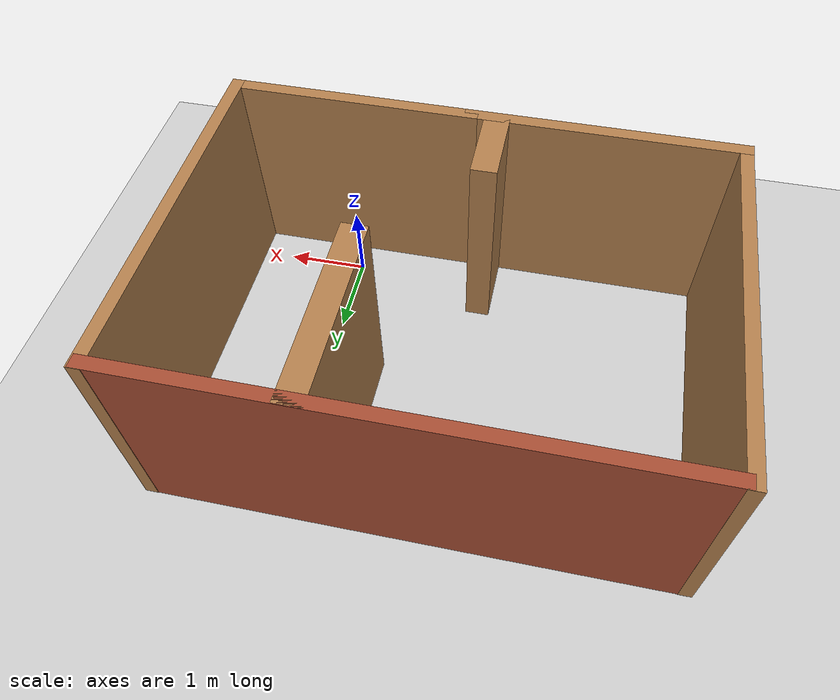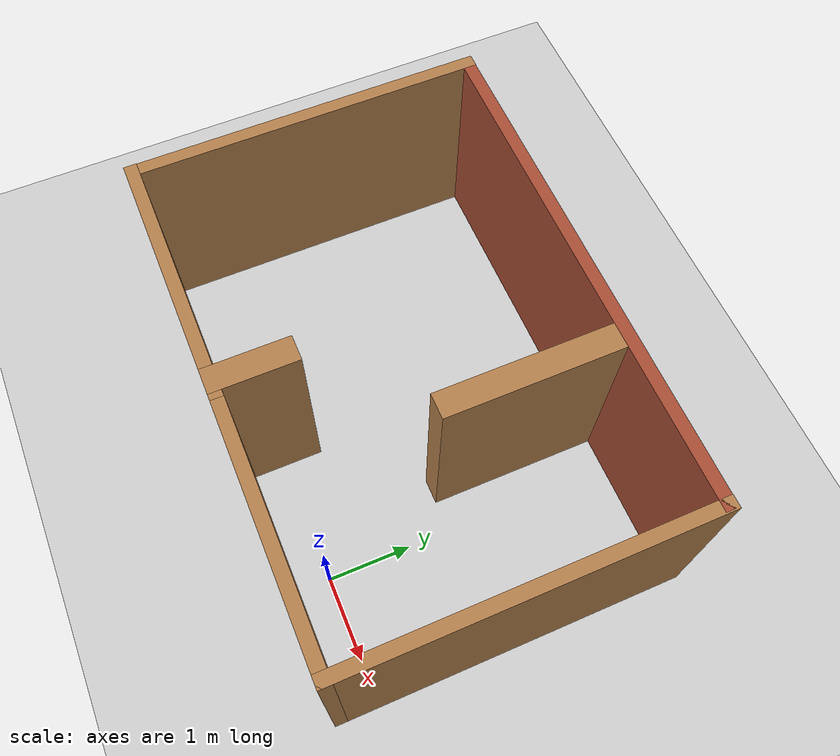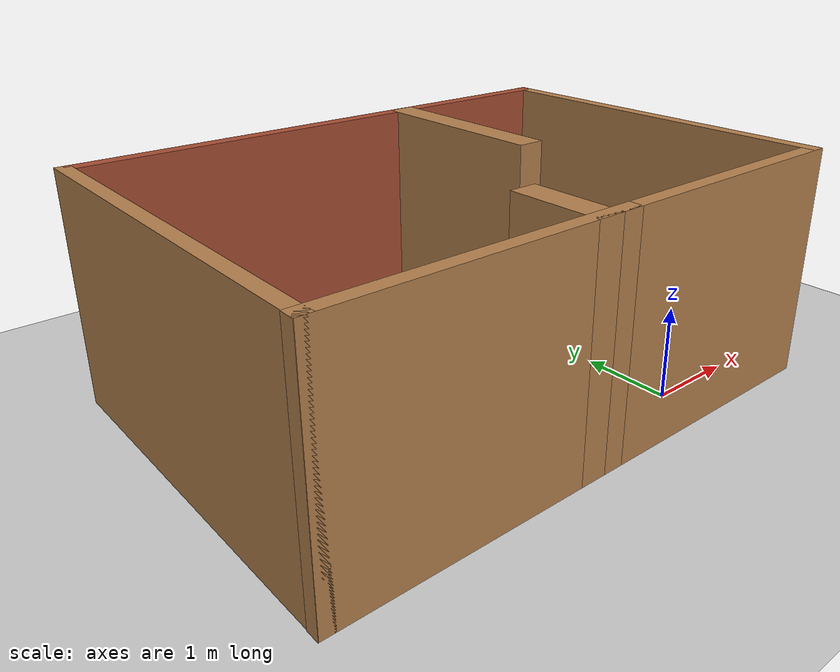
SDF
<sdf version="1.6">
 <world name="default">
  <light name="sun" type="directional">
   <pose>0 0 10 0 -0 0</pose>
   <diffuse>0.8 0.8 0.8 1</diffuse>
   <specular>0.2 0.2 0.2 1</specular>
   <attenuation>
    <range>1000</range>
    <constant>0.9</constant>
    <linear>0.01</linear>
    <quadratic>0.001</quadratic>
   </attenuation>
   <direction>-0.5 0.1 -0.9</direction>
  </light>
  <model name="ground_plane">
   <static>1</static>
   <link name="link">
    <collision name="collision">
     <geometry><plane><normal>0 0 1</normal><size>100 100</size></plane></geometry>
     <surface>
      <contact><collide_bitmask>65535</collide_bitmask></contact>
      <friction><ode><mu>100</mu><mu2>50</mu2></ode></friction>
     </surface>
    </collision>
    <visual name="visual">
     <cast_shadows>0</cast_shadows>
     <geometry><plane><normal>0 0 1</normal><size>100 100</size></plane></geometry>
     <material>
      <script><uri>file://media/materials/scripts/gazebo.material</uri><name>Gazebo/Grey</name></script>
     </material>
    </visual>
   </link>
  </model>
  <gravity>0 0 -9.8</gravity>
  <magnetic_field>6e-06 2.3e-05 -4.2e-05</magnetic_field>
  <atmosphere type="adiabatic"/>
  <physics name="default_physics" default="0" type="ode">
   <max_step_size>0.001</max_step_size>
   <real_time_factor>1</real_time_factor>
   <real_time_update_rate>1000</real_time_update_rate>
  </physics>
  <scene><ambient>0.4 0.4 0.4 1</ambient><background>0.7 0.7 0.7 1</background><shadows>1</shadows></scene>
  <spherical_coordinates>
   <surface_model>EARTH_WGS84</surface_model>
   <latitude_deg>0</latitude_deg>
   <longitude_deg>0</longitude_deg>
   <elevation>0</elevation>
   <heading_deg>0</heading_deg>
  </spherical_coordinates>
  <model name="MyRoom">
   <pose>-1.51253 1.59917 0 0 -0 0</pose>
   <link name="Wall_13">
    <collision name="Wall_13_Collision">
     <geometry><box><size>3.26 0.15 2.5</size></box></geometry>
     <pose>0 0 1.25 0 -0 0</pose>
    </collision>
    <visual name="Wall_13_Visual">
     <pose>0 0 1.25 0 -0 0</pose>
     <geometry><box><size>3.26 0.15 2.5</size></box></geometry>
     <material>
      <script><uri>file://media/materials/scripts/gazebo.material</uri><name>Gazebo/Wood</name></script>
      <ambient>1 1 1 1</ambient>
     </material>
     <meta><layer>0</layer></meta>
    </visual>
    <pose>-1.42063 -2.05 0 0 -0 0</pose>
   </link>
   <link name="Wall_14">
    <collision name="Wall_14_Collision">
     <geometry><box><size>1 0.3 2.5</size></box></geometry>
     <pose>0 0.3 1.25 0 -0 0</pose>
    </collision>
    <visual name="Wall_14_Visual">
     <pose>0 0.3 1.25 0 -0 0</pose>
     <geometry><box><size>1 0.3 2.5</size></box></geometry>
     <material>
      <script><uri>file://media/materials/scripts/gazebo.material</uri><name>Gazebo/Wood</name></script>
      <ambient>1 1 1 1</ambient>
     </material>
     <meta><layer>0</layer></meta>
    </visual>
    <pose>0.125627 -1.625 0 0 -0 1.5708</pose>
   </link>
   <link name="Wall_20">
    <collision name="Wall_20_Collision">
     <geometry><box><size>6 0.15 2.5</size></box></geometry>
     <pose>0 0 1.25 0 -0 0</pose>
    </collision>
    <visual name="Wall_20_Visual">
     <pose>0 0 1.25 0 -0 0</pose>
     <geometry><box><size>6 0.15 2.5</size></box></geometry>
     <material>
      <script><uri>file://media/materials/scripts/gazebo.material</uri><name>Gazebo/Bricks</name></script>
      <ambient>1 1 1 1</ambient>
     </material>
     <meta><layer>0</layer></meta>
    </visual>
    <pose>0.035821 2.04626 0 0 -0 3.14159</pose>
   </link>
   <link name="Wall_27">
    <collision name="Wall_27_Collision">
     <geometry><box><size>4.25 0.15 2.5</size></box></geometry>
     <pose>0 0 1.25 0 -0 0</pose>
    </collision>
    <visual name="Wall_27_Visual">
     <pose>0 0 1.25 0 -0 0</pose>
     <geometry><box><size>4.25 0.15 2.5</size></box></geometry>
     <material>
      <script><uri>file://media/materials/scripts/gazebo.material</uri><name>Gazebo/Wood</name></script>
      <ambient>1 1 1 1</ambient>
     </material>
     <meta><layer>0</layer></meta>
    </visual>
    <pose>-2.97063 0 0 0 -0 1.5708</pose>
   </link>
   <link name="Wall_30">
    <collision name="Wall_30_Collision">
     <geometry><box><size>4.25 0.15 2.5</size></box></geometry>
     <pose>0 0 1.25 0 -0 0</pose>
    </collision>
    <visual name="Wall_30_Visual">
     <pose>0 0 1.25 0 -0 0</pose>
     <geometry><box><size>4.25 0.15 2.5</size></box></geometry>
     <material>
      <script><uri>file://media/materials/scripts/gazebo.material</uri><name>Gazebo/Wood</name></script>
      <ambient>1 1 1 1</ambient>
     </material>
     <meta><layer>0</layer></meta>
    </visual>
    <pose>2.97563 0 0 0 0 -1.5708</pose>
   </link>
   <link name="Wall_31">
    <collision name="Wall_31_Collision">
     <geometry><box><size>3 0.15 2.5</size></box></geometry>
     <pose>0 0 1.25 0 -0 0</pose>
    </collision>
    <visual name="Wall_31_Visual">
     <pose>0 0 1.25 0 -0 0</pose>
     <geometry><box><size>3 0.15 2.5</size></box></geometry>
     <material>
      <script><uri>file://media/materials/scripts/gazebo.material</uri><name>Gazebo/Wood</name></script>
      <ambient>1 1 1 1</ambient>
     </material>
     <meta><layer>0</layer></meta>
    </visual>
    <pose>1.55063 -2.05 0 0 -0 3.14159</pose>
   </link>
   <link name="Wall_36">
    <collision name="Wall_36_Collision">
     <geometry><box><size>2.2 0.3 2.5</size></box></geometry>
     <pose>-0.25 0 1.25 0 -0 0</pose>
    </collision>
    <visual name="Wall_36_Visual">
     <pose>-0.25 0 1.25 0 -0 0</pose>
     <geometry><box><size>2.2 0.3 2.5</size></box></geometry>
     <material>
      <script><uri>file://media/materials/scripts/gazebo.material</uri><name>Gazebo/Wood</name></script>
      <ambient>1 1 1 1</ambient>
     </material>
     <meta><layer>0</layer></meta>
    </visual>
    <pose>0.979183 0.763747 0 0 0 -1.57151</pose>
   </link>
   <static>1</static>
  </model>
 </world>
</sdf>
